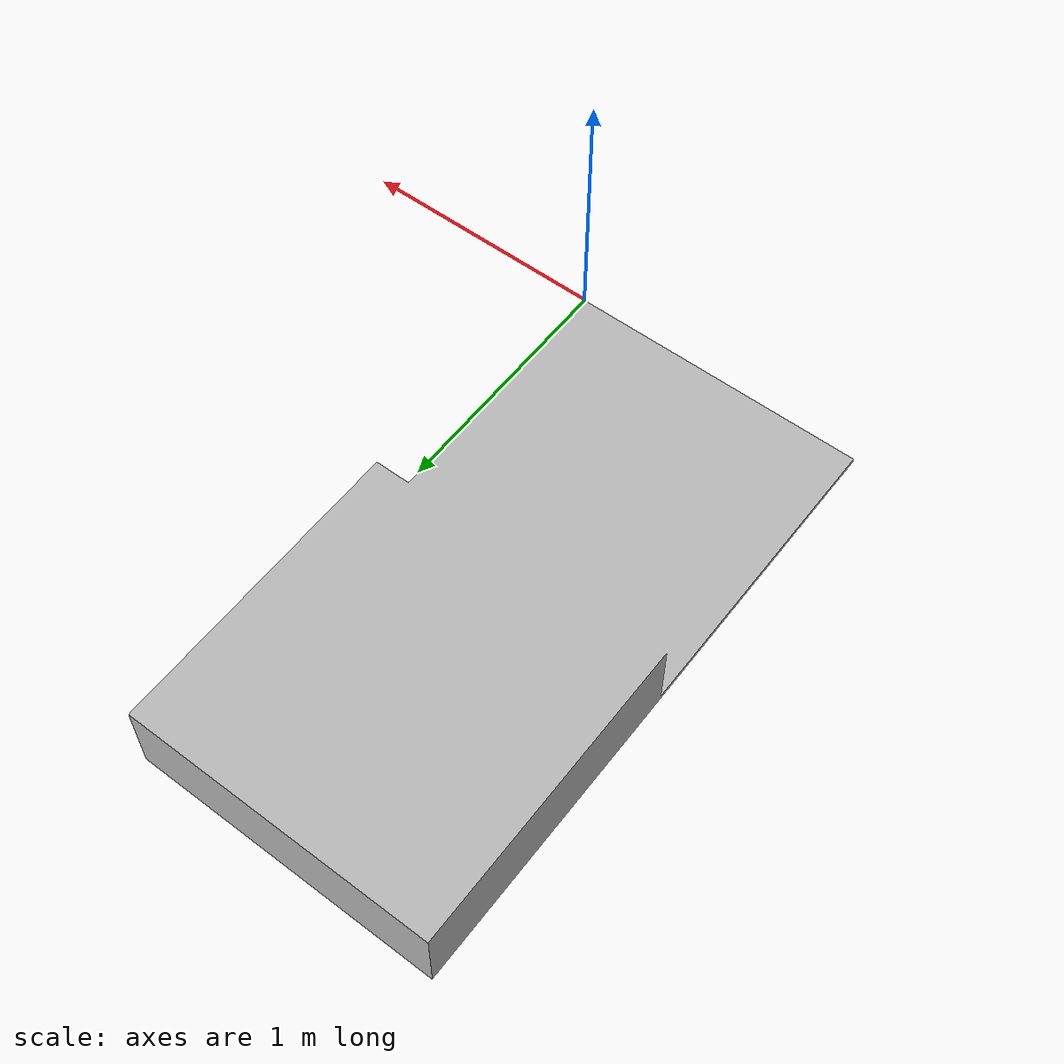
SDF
<?xml version="1.0" ?>
<sdf version="1.6">
  <model name="pallet30">
    <static>true</static>
    <pose>0 0 0 0 0 0</pose>
    <link name="link">
      <collision name="collision">
        <geometry>
          <mesh>
            <scale>0.01 0.01 0.01</scale>
            <uri>model://pallet30/Pallet_30cm.stl</uri>
          </mesh>
        </geometry>
        <surface>
          <friction>
            <ode>
              <mu>100</mu>
              <mu2>50</mu2>
            </ode>
          </friction>
        </surface>
      </collision>
      <visual name="visual">
        <geometry>
          <mesh>
            <scale>0.01 0.01 0.01</scale>
            <uri>model://pallet30/Pallet_30cm.stl</uri>
          </mesh>
        </geometry>
      </visual>
    </link>
  </model>
</sdf>
